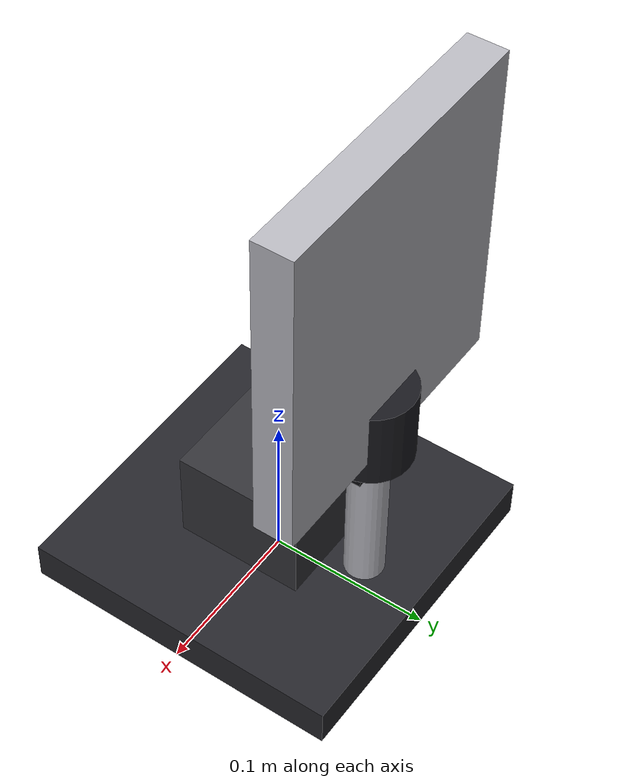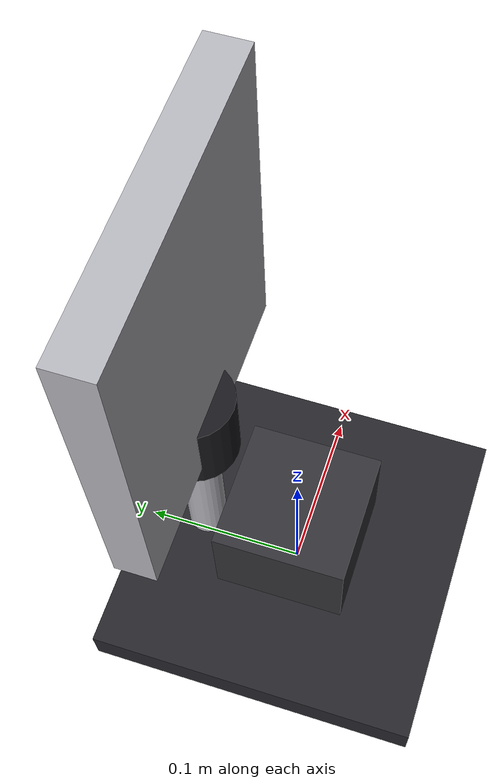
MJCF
<?xml version="1.0" encoding="utf-8"?>
<mujoco model="real_lab_maryland_university_jpk_afm">
  <compiler angle="radian" autolimits="true"/>
  <default>
    <default class="body"><geom contype="1" conaffinity="1"/></default>
  </default>
  <worldbody>
    <body name="base">
      <geom type="box" size="0.1 0.1 0.012" pos="0 0 0.012" rgba="0.15 0.15 0.17 1" class="body"/>
      <geom type="box" size="0.04 0.04 0.03" pos="0 0 0.055" rgba="0.2 0.2 0.22 1" class="body"/>
      <geom type="cylinder" size="0.012 0.11" pos="0 0.06 0.13" rgba="0.72 0.72 0.75 1" class="body"/>
      <geom type="box" size="0.09 0.012 0.1" pos="0 0.06 0.24" rgba="0.72 0.72 0.75 1" class="body"/>
      <body name="scan_head" pos="0 0.06 0.15">
        <joint name="scan_head_joint" type="slide" axis="0 0 1" range="-0.04 0" damping="1.0" frictionloss="0.4"/>
  <geom type="cylinder" size="0.025 0.025" pos="0 0 0" rgba="0.1 0.1 0.12 1" class="body"/>
  <geom type="box" size="0.018 0.006 0.006" pos="0 0 -0.03" rgba="0.05 0.05 0.06 1" class="body"/>
      </body>
    </body>
  </worldbody>
</mujoco>
